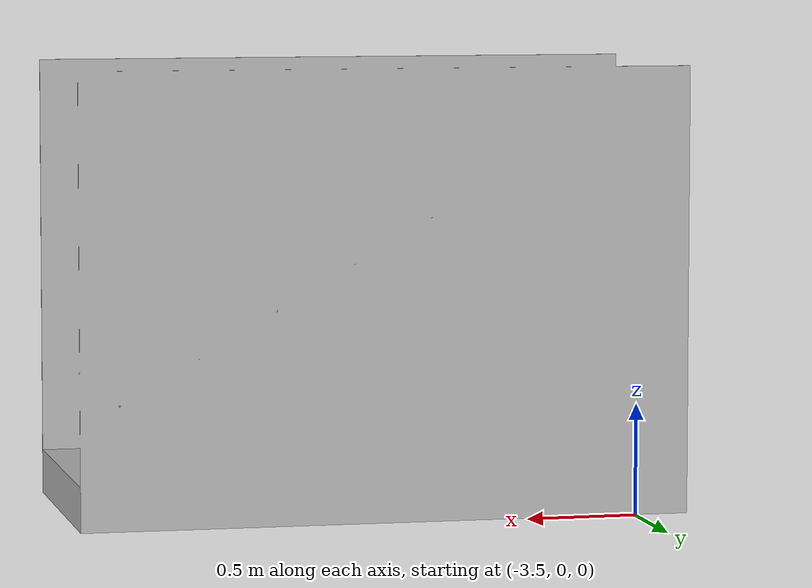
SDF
<?xml version="1.0" ?>
<sdf version="1.6">
  <model name="stairs_30deg_2deb">
    <static>true</static>
    <pose>-1 0 0 1.5708 0 0</pose>
    <link name="link">
      <collision name="collision">
        <geometry>
          <mesh>
            <scale>0.01 0.01 0.01</scale>
            <uri>model://stairs_30deg_2deb/Stairs_30deg_2deb.dae</uri>
          </mesh>
        </geometry>
        <surface>
          <friction>
            <ode>
              <mu>100</mu>
              <mu2>50</mu2>
            </ode>
          </friction>
        </surface>
      </collision>
      <visual name="visual">
        <geometry>
          <mesh>
            <scale>0.01 0.01 0.01</scale>
            <uri>model://stairs_30deg_2deb/Stairs_30deg_2deb.dae</uri>
          </mesh>
        </geometry>
      </visual>
    </link>
  </model>
</sdf>
